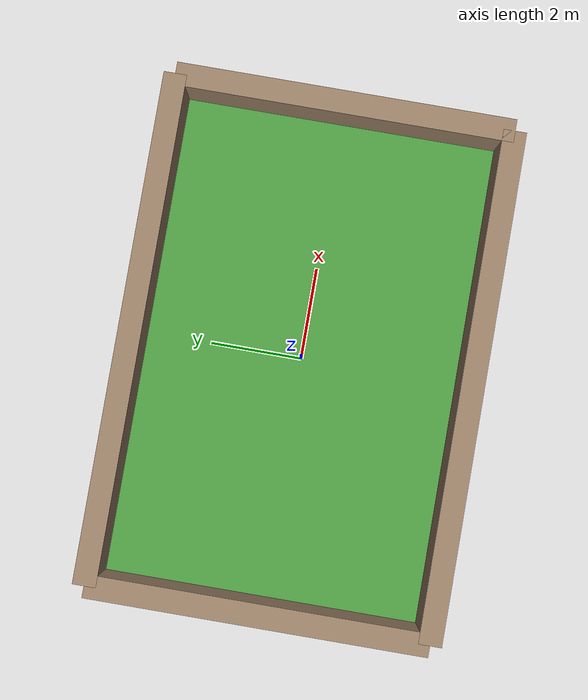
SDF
<?xml version="1.0" ?>
<sdf version="1.6">
  <world name="eval_lvl1_ep000">
    <light name="sun" type="directional">
      <cast_shadows>true</cast_shadows>
      <diffuse>0.8 0.8 0.8 1</diffuse>
      <specular>0.2 0.2 0.2 1</specular>
      <pose>0 0 10 0 0 0</pose>
      <direction>-0.5 0.5 -1</direction>
    </light>
    <include>
      <uri>model://ground_plane</uri>
    </include>
    <physics type="ode">
      <max_step_size>0.001</max_step_size>
      <real_time_factor>1</real_time_factor>
      <real_time_update_rate>1000</real_time_update_rate>
    </physics>
    <gravity>0 0 -9.8</gravity>
    <atmosphere type="adiabatic"/>
    <scene>
      <ambient>0.4 0.4 0.4 1</ambient>
      <background>0.7 0.7 0.7 1</background>
      <shadows>1</shadows>
    </scene>
    <model name="eval_lvl1_ep000_field">
      <static>true</static>
      <link name="link">
        <collision name="collision">
          <geometry>
            <plane>
              <normal>0 0 1</normal>
              <size>11.018634281395808 7.345756187597205</size>
            </plane>
          </geometry>
        </collision>
        <visual name="visual">
          <geometry>
            <plane>
              <normal>0 0 1</normal>
              <size>11.018634281395808 7.345756187597205</size>
            </plane>
          </geometry>
          <material>
            <script>
              <uri>file://media/materials/scripts/gazebo.material</uri>
              <name>Gazebo/Grass</name>
            </script>
          </material>
        </visual>
      </link>
      <pose>0.0 0.0 0.01 0 0 0</pose>
    </model>
    <model name="eval_lvl1_ep000_boundary_0">
      <static>true</static>
      <pose>0.0 -3.6728780937986025 0.5 0 0 0.0</pose>
      <link name="link">
        <collision name="collision">
          <geometry>
            <box>
              <size>11.018634281395808 0.5 1.0</size>
            </box>
          </geometry>
        </collision>
        <visual name="visual">
          <geometry>
            <box>
              <size>11.018634281395808 0.5 1.0</size>
            </box>
          </geometry>
          <material>
            <ambient>0.4 0.3 0.2 1</ambient>
            <diffuse>0.6 0.5 0.4 1</diffuse>
          </material>
        </visual>
      </link>
    </model>
    <model name="eval_lvl1_ep000_boundary_1">
      <static>true</static>
      <pose>5.509317140697904 0.0 0.5 0 0 1.5707963267948966</pose>
      <link name="link">
        <collision name="collision">
          <geometry>
            <box>
              <size>7.345756187597205 0.5 1.0</size>
            </box>
          </geometry>
        </collision>
        <visual name="visual">
          <geometry>
            <box>
              <size>7.345756187597205 0.5 1.0</size>
            </box>
          </geometry>
          <material>
            <ambient>0.4 0.3 0.2 1</ambient>
            <diffuse>0.6 0.5 0.4 1</diffuse>
          </material>
        </visual>
      </link>
    </model>
    <model name="eval_lvl1_ep000_boundary_2">
      <static>true</static>
      <pose>0.0 3.6728780937986025 0.5 0 0 3.141592653589793</pose>
      <link name="link">
        <collision name="collision">
          <geometry>
            <box>
              <size>11.018634281395808 0.5 1.0</size>
            </box>
          </geometry>
        </collision>
        <visual name="visual">
          <geometry>
            <box>
              <size>11.018634281395808 0.5 1.0</size>
            </box>
          </geometry>
          <material>
            <ambient>0.4 0.3 0.2 1</ambient>
            <diffuse>0.6 0.5 0.4 1</diffuse>
          </material>
        </visual>
      </link>
    </model>
    <model name="eval_lvl1_ep000_boundary_3">
      <static>true</static>
      <pose>-5.509317140697904 0.0 0.5 0 0 -1.5707963267948966</pose>
      <link name="link">
        <collision name="collision">
          <geometry>
            <box>
              <size>7.345756187597205 0.5 1.0</size>
            </box>
          </geometry>
        </collision>
        <visual name="visual">
          <geometry>
            <box>
              <size>7.345756187597205 0.5 1.0</size>
            </box>
          </geometry>
          <material>
            <ambient>0.4 0.3 0.2 1</ambient>
            <diffuse>0.6 0.5 0.4 1</diffuse>
          </material>
        </visual>
      </link>
    </model>
    <plugin name="gazebo_ros_state" filename="libgazebo_ros_state.so">
      <ros>
        <namespace>/</namespace>
      </ros>
    </plugin>
  </world>
</sdf>
